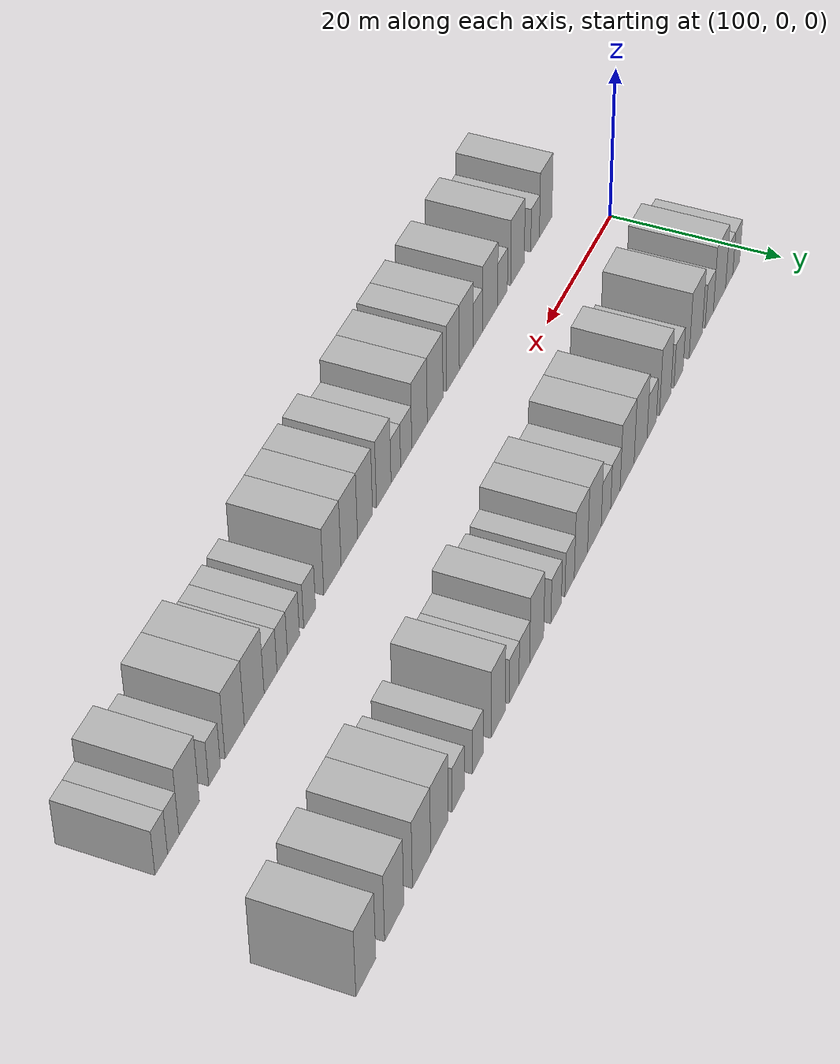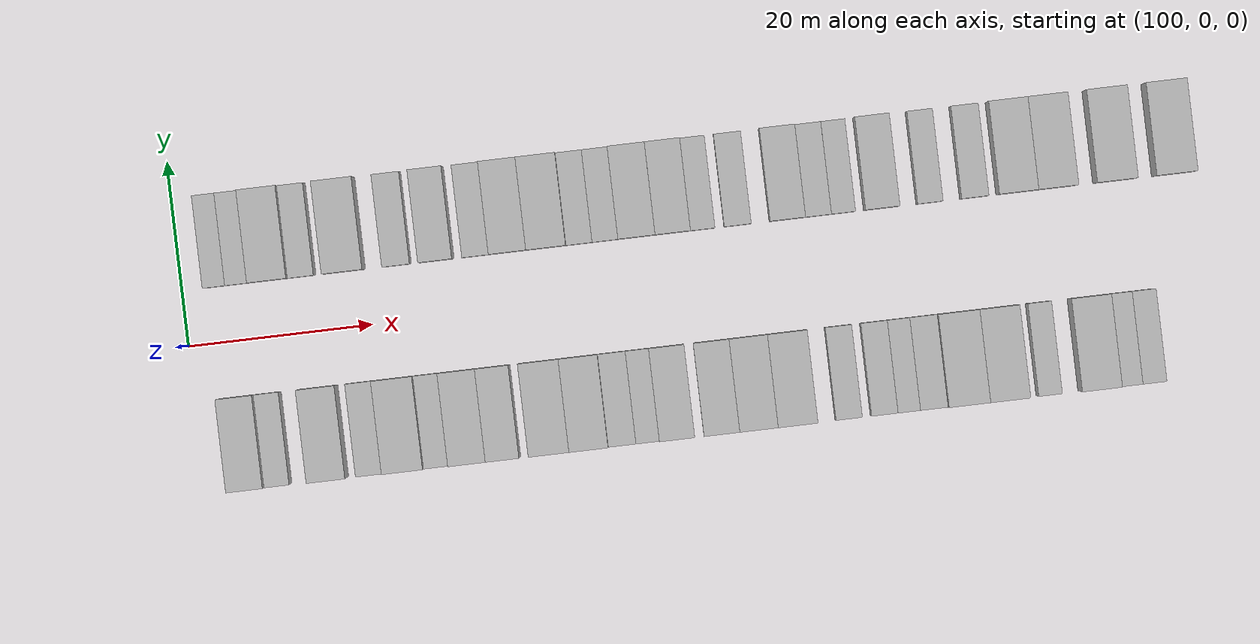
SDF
<sdf version="1.6">
 <world name="default">
  <model name="building_27">
   <static>1</static>
   <pose>103.7505 11.0000 0 0.000000 0.000000 1.570796</pose>
   <link name="link">
    <pose>0 0 3.00 0 0 0</pose>
    <collision name="collision"><geometry><box><size>10.0000 2.4264 6.0000</size></box></geometry></collision>
    <visual name="visual">
     <cast_shadows>0</cast_shadows>
     <geometry><box><size>10.0000 2.4264 6.0000</size></box></geometry>
     <material>
      <script>
       <uri>model://HANNAS_wall/materials/scripts</uri>
       <uri>model://HANNAS_wall/materials/textures</uri>
       <name>vrc/HANNAS_wall</name>
      </script>
     </material>
    </visual>
   </link>
  </model>
  <model name="building_28">
   <static>1</static>
   <pose>106.2379 11.0000 0 0.000000 0.000000 1.570796</pose>
   <link name="link">
    <pose>0 0 3.00 0 0 0</pose>
    <collision name="collision"><geometry><box><size>10.0000 2.5483 6.0000</size></box></geometry></collision>
    <visual name="visual">
     <cast_shadows>0</cast_shadows>
     <geometry><box><size>10.0000 2.5483 6.0000</size></box></geometry>
     <material>
      <script>
       <uri>model://HANNAS_wall/materials/scripts</uri>
       <uri>model://HANNAS_wall/materials/textures</uri>
       <name>vrc/HANNAS_wall</name>
      </script>
     </material>
    </visual>
   </link>
  </model>
  <model name="building_29">
   <static>1</static>
   <pose>109.6192 11.0000 0 0.000000 0.000000 1.570796</pose>
   <link name="link">
    <pose>0 0 4.50 0 0 0</pose>
    <collision name="collision"><geometry><box><size>10.0000 4.2144 9.0000</size></box></geometry></collision>
    <visual name="visual">
     <cast_shadows>0</cast_shadows>
     <geometry><box><size>10.0000 4.2144 9.0000</size></box></geometry>
     <material>
      <script>
       <uri>model://HANNAS_wall/materials/scripts</uri>
       <uri>model://HANNAS_wall/materials/textures</uri>
       <name>vrc/HANNAS_wall</name>
      </script>
     </material>
    </visual>
   </link>
  </model>
  <model name="building_30">
   <static>1</static>
   <pose>113.1307 11.0000 0 0.000000 0.000000 1.570796</pose>
   <link name="link">
    <pose>0 0 3.00 0 0 0</pose>
    <collision name="collision"><geometry><box><size>10.0000 2.8086 6.0000</size></box></geometry></collision>
    <visual name="visual">
     <cast_shadows>0</cast_shadows>
     <geometry><box><size>10.0000 2.8086 6.0000</size></box></geometry>
     <material>
      <script>
       <uri>model://HANNAS_wall/materials/scripts</uri>
       <uri>model://HANNAS_wall/materials/textures</uri>
       <name>vrc/HANNAS_wall</name>
      </script>
     </material>
    </visual>
   </link>
  </model>
  <model name="building_31">
   <static>1</static>
   <pose>117.7258 11.0000 0 0.000000 0.000000 1.570796</pose>
   <link name="link">
    <pose>0 0 4.50 0 0 0</pose>
    <collision name="collision"><geometry><box><size>10.0000 4.3816 9.0000</size></box></geometry></collision>
    <visual name="visual">
     <cast_shadows>0</cast_shadows>
     <geometry><box><size>10.0000 4.3816 9.0000</size></box></geometry>
     <material>
      <script>
       <uri>model://HANNAS_wall/materials/scripts</uri>
       <uri>model://HANNAS_wall/materials/textures</uri>
       <name>vrc/HANNAS_wall</name>
      </script>
     </material>
    </visual>
   </link>
  </model>
  <model name="building_32">
   <static>1</static>
   <pose>123.4141 11.0000 0 0.000000 0.000000 1.570796</pose>
   <link name="link">
    <pose>0 0 3.00 0 0 0</pose>
    <collision name="collision"><geometry><box><size>10.0000 2.9950 6.0000</size></box></geometry></collision>
    <visual name="visual">
     <cast_shadows>0</cast_shadows>
     <geometry><box><size>10.0000 2.9950 6.0000</size></box></geometry>
     <material>
      <script>
       <uri>model://HANNAS_wall/materials/scripts</uri>
       <uri>model://HANNAS_wall/materials/textures</uri>
       <name>vrc/HANNAS_wall</name>
      </script>
     </material>
    </visual>
   </link>
  </model>
  <model name="building_33">
   <static>1</static>
   <pose>127.7381 11.0000 0 0.000000 0.000000 1.570796</pose>
   <link name="link">
    <pose>0 0 4.50 0 0 0</pose>
    <collision name="collision"><geometry><box><size>10.0000 3.6529 9.0000</size></box></geometry></collision>
    <visual name="visual">
     <cast_shadows>0</cast_shadows>
     <geometry><box><size>10.0000 3.6529 9.0000</size></box></geometry>
     <material>
      <script>
       <uri>model://HANNAS_wall/materials/scripts</uri>
       <uri>model://HANNAS_wall/materials/textures</uri>
       <name>vrc/HANNAS_wall</name>
      </script>
     </material>
    </visual>
   </link>
  </model>
  <model name="building_34">
   <static>1</static>
   <pose>132.0323 11.0000 0 0.000000 0.000000 1.570796</pose>
   <link name="link">
    <pose>0 0 3.00 0 0 0</pose>
    <collision name="collision"><geometry><box><size>10.0000 2.9356 6.0000</size></box></geometry></collision>
    <visual name="visual">
     <cast_shadows>0</cast_shadows>
     <geometry><box><size>10.0000 2.9356 6.0000</size></box></geometry>
     <material>
      <script>
       <uri>model://HANNAS_wall/materials/scripts</uri>
       <uri>model://HANNAS_wall/materials/textures</uri>
       <name>vrc/HANNAS_wall</name>
      </script>
     </material>
    </visual>
   </link>
  </model>
  <model name="building_35">
   <static>1</static>
   <pose>135.5147 11.0000 0 0.000000 0.000000 1.570796</pose>
   <link name="link">
    <pose>0 0 4.50 0 0 0</pose>
    <collision name="collision"><geometry><box><size>10.0000 4.0293 9.0000</size></box></geometry></collision>
    <visual name="visual">
     <cast_shadows>0</cast_shadows>
     <geometry><box><size>10.0000 4.0293 9.0000</size></box></geometry>
     <material>
      <script>
       <uri>model://HANNAS_wall/materials/scripts</uri>
       <uri>model://HANNAS_wall/materials/textures</uri>
       <name>vrc/HANNAS_wall</name>
      </script>
     </material>
    </visual>
   </link>
  </model>
  <model name="building_36">
   <static>1</static>
   <pose>139.6700 11.0000 0 0.000000 0.000000 1.570796</pose>
   <link name="link">
    <pose>0 0 4.50 0 0 0</pose>
    <collision name="collision"><geometry><box><size>10.0000 4.2813 9.0000</size></box></geometry></collision>
    <visual name="visual">
     <cast_shadows>0</cast_shadows>
     <geometry><box><size>10.0000 4.2813 9.0000</size></box></geometry>
     <material>
      <script>
       <uri>model://HANNAS_wall/materials/scripts</uri>
       <uri>model://HANNAS_wall/materials/textures</uri>
       <name>vrc/HANNAS_wall</name>
      </script>
     </material>
    </visual>
   </link>
  </model>
  <model name="building_37">
   <static>1</static>
   <pose>143.2204 11.0000 0 0.000000 0.000000 1.570796</pose>
   <link name="link">
    <pose>0 0 3.00 0 0 0</pose>
    <collision name="collision"><geometry><box><size>10.0000 2.8195 6.0000</size></box></geometry></collision>
    <visual name="visual">
     <cast_shadows>0</cast_shadows>
     <geometry><box><size>10.0000 2.8195 6.0000</size></box></geometry>
     <material>
      <script>
       <uri>model://HANNAS_wall/materials/scripts</uri>
       <uri>model://HANNAS_wall/materials/textures</uri>
       <name>vrc/HANNAS_wall</name>
      </script>
     </material>
    </visual>
   </link>
  </model>
  <model name="building_38">
   <static>1</static>
   <pose>146.0346 11.0000 0 0.000000 0.000000 1.570796</pose>
   <link name="link">
    <pose>0 0 3.00 0 0 0</pose>
    <collision name="collision"><geometry><box><size>10.0000 2.8088 6.0000</size></box></geometry></collision>
    <visual name="visual">
     <cast_shadows>0</cast_shadows>
     <geometry><box><size>10.0000 2.8088 6.0000</size></box></geometry>
     <material>
      <script>
       <uri>model://HANNAS_wall/materials/scripts</uri>
       <uri>model://HANNAS_wall/materials/textures</uri>
       <name>vrc/HANNAS_wall</name>
      </script>
     </material>
    </visual>
   </link>
  </model>
  <model name="building_39">
   <static>1</static>
   <pose>149.4398 11.0000 0 0.000000 0.000000 1.570796</pose>
   <link name="link">
    <pose>0 0 4.50 0 0 0</pose>
    <collision name="collision"><geometry><box><size>10.0000 4.0015 9.0000</size></box></geometry></collision>
    <visual name="visual">
     <cast_shadows>0</cast_shadows>
     <geometry><box><size>10.0000 4.0015 9.0000</size></box></geometry>
     <material>
      <script>
       <uri>model://HANNAS_wall/materials/scripts</uri>
       <uri>model://HANNAS_wall/materials/textures</uri>
       <name>vrc/HANNAS_wall</name>
      </script>
     </material>
    </visual>
   </link>
  </model>
  <model name="building_40">
   <static>1</static>
   <pose>153.3463 11.0000 0 0.000000 0.000000 1.570796</pose>
   <link name="link">
    <pose>0 0 4.50 0 0 0</pose>
    <collision name="collision"><geometry><box><size>10.0000 3.8114 9.0000</size></box></geometry></collision>
    <visual name="visual">
     <cast_shadows>0</cast_shadows>
     <geometry><box><size>10.0000 3.8114 9.0000</size></box></geometry>
     <material>
      <script>
       <uri>model://HANNAS_wall/materials/scripts</uri>
       <uri>model://HANNAS_wall/materials/textures</uri>
       <name>vrc/HANNAS_wall</name>
      </script>
     </material>
    </visual>
   </link>
  </model>
  <model name="building_41">
   <static>1</static>
   <pose>156.5776 11.0000 0 0.000000 0.000000 1.570796</pose>
   <link name="link">
    <pose>0 0 3.00 0 0 0</pose>
    <collision name="collision"><geometry><box><size>10.0000 2.6512 6.0000</size></box></geometry></collision>
    <visual name="visual">
     <cast_shadows>0</cast_shadows>
     <geometry><box><size>10.0000 2.6512 6.0000</size></box></geometry>
     <material>
      <script>
       <uri>model://HANNAS_wall/materials/scripts</uri>
       <uri>model://HANNAS_wall/materials/textures</uri>
       <name>vrc/HANNAS_wall</name>
      </script>
     </material>
    </visual>
   </link>
  </model>
  <model name="building_42">
   <static>1</static>
   <pose>160.3607 11.0000 0 0.000000 0.000000 1.570796</pose>
   <link name="link">
    <pose>0 0 3.00 0 0 0</pose>
    <collision name="collision"><geometry><box><size>10.0000 2.9149 6.0000</size></box></geometry></collision>
    <visual name="visual">
     <cast_shadows>0</cast_shadows>
     <geometry><box><size>10.0000 2.9149 6.0000</size></box></geometry>
     <material>
      <script>
       <uri>model://HANNAS_wall/materials/scripts</uri>
       <uri>model://HANNAS_wall/materials/textures</uri>
       <name>vrc/HANNAS_wall</name>
      </script>
     </material>
    </visual>
   </link>
  </model>
  <model name="building_43">
   <static>1</static>
   <pose>165.7238 11.0000 0 0.000000 0.000000 1.570796</pose>
   <link name="link">
    <pose>0 0 4.50 0 0 0</pose>
    <collision name="collision"><geometry><box><size>10.0000 3.8115 9.0000</size></box></geometry></collision>
    <visual name="visual">
     <cast_shadows>0</cast_shadows>
     <geometry><box><size>10.0000 3.8115 9.0000</size></box></geometry>
     <material>
      <script>
       <uri>model://HANNAS_wall/materials/scripts</uri>
       <uri>model://HANNAS_wall/materials/textures</uri>
       <name>vrc/HANNAS_wall</name>
      </script>
     </material>
    </visual>
   </link>
  </model>
  <model name="building_44">
   <static>1</static>
   <pose>169.0576 11.0000 0 0.000000 0.000000 1.570796</pose>
   <link name="link">
    <pose>0 0 3.00 0 0 0</pose>
    <collision name="collision"><geometry><box><size>10.0000 2.8561 6.0000</size></box></geometry></collision>
    <visual name="visual">
     <cast_shadows>0</cast_shadows>
     <geometry><box><size>10.0000 2.8561 6.0000</size></box></geometry>
     <material>
      <script>
       <uri>model://HANNAS_wall/materials/scripts</uri>
       <uri>model://HANNAS_wall/materials/textures</uri>
       <name>vrc/HANNAS_wall</name>
      </script>
     </material>
    </visual>
   </link>
  </model>
  <model name="building_45">
   <static>1</static>
   <pose>171.7850 11.0000 0 0.000000 0.000000 1.570796</pose>
   <link name="link">
    <pose>0 0 3.00 0 0 0</pose>
    <collision name="collision"><geometry><box><size>10.0000 2.5986 6.0000</size></box></geometry></collision>
    <visual name="visual">
     <cast_shadows>0</cast_shadows>
     <geometry><box><size>10.0000 2.5986 6.0000</size></box></geometry>
     <material>
      <script>
       <uri>model://HANNAS_wall/materials/scripts</uri>
       <uri>model://HANNAS_wall/materials/textures</uri>
       <name>vrc/HANNAS_wall</name>
      </script>
     </material>
    </visual>
   </link>
  </model>
  <model name="building_46">
   <static>1</static>
   <pose>175.9358 11.0000 0 0.000000 0.000000 1.570796</pose>
   <link name="link">
    <pose>0 0 4.50 0 0 0</pose>
    <collision name="collision"><geometry><box><size>10.0000 3.7032 9.0000</size></box></geometry></collision>
    <visual name="visual">
     <cast_shadows>0</cast_shadows>
     <geometry><box><size>10.0000 3.7032 9.0000</size></box></geometry>
     <material>
      <script>
       <uri>model://HANNAS_wall/materials/scripts</uri>
       <uri>model://HANNAS_wall/materials/textures</uri>
       <name>vrc/HANNAS_wall</name>
      </script>
     </material>
    </visual>
   </link>
  </model>
  <model name="building_47">
   <static>1</static>
   <pose>181.1618 11.0000 0 0.000000 0.000000 1.570796</pose>
   <link name="link">
    <pose>0 0 3.00 0 0 0</pose>
    <collision name="collision"><geometry><box><size>10.0000 2.7487 6.0000</size></box></geometry></collision>
    <visual name="visual">
     <cast_shadows>0</cast_shadows>
     <geometry><box><size>10.0000 2.7487 6.0000</size></box></geometry>
     <material>
      <script>
       <uri>model://HANNAS_wall/materials/scripts</uri>
       <uri>model://HANNAS_wall/materials/textures</uri>
       <name>vrc/HANNAS_wall</name>
      </script>
     </material>
    </visual>
   </link>
  </model>
  <model name="building_48">
   <static>1</static>
   <pose>186.0117 11.0000 0 0.000000 0.000000 1.570796</pose>
   <link name="link">
    <pose>0 0 3.00 0 0 0</pose>
    <collision name="collision"><geometry><box><size>10.0000 2.9511 6.0000</size></box></geometry></collision>
    <visual name="visual">
     <cast_shadows>0</cast_shadows>
     <geometry><box><size>10.0000 2.9511 6.0000</size></box></geometry>
     <material>
      <script>
       <uri>model://HANNAS_wall/materials/scripts</uri>
       <uri>model://HANNAS_wall/materials/textures</uri>
       <name>vrc/HANNAS_wall</name>
      </script>
     </material>
    </visual>
   </link>
  </model>
  <model name="building_49">
   <static>1</static>
   <pose>190.6039 11.0000 0 0.000000 0.000000 1.570796</pose>
   <link name="link">
    <pose>0 0 4.50 0 0 0</pose>
    <collision name="collision"><geometry><box><size>10.0000 4.2335 9.0000</size></box></geometry></collision>
    <visual name="visual">
     <cast_shadows>0</cast_shadows>
     <geometry><box><size>10.0000 4.2335 9.0000</size></box></geometry>
     <material>
      <script>
       <uri>model://HANNAS_wall/materials/scripts</uri>
       <uri>model://HANNAS_wall/materials/textures</uri>
       <name>vrc/HANNAS_wall</name>
      </script>
     </material>
    </visual>
   </link>
  </model>
  <model name="building_50">
   <static>1</static>
   <pose>194.8716 11.0000 0 0.000000 0.000000 1.570796</pose>
   <link name="link">
    <pose>0 0 4.50 0 0 0</pose>
    <collision name="collision"><geometry><box><size>10.0000 4.3019 9.0000</size></box></geometry></collision>
    <visual name="visual">
     <cast_shadows>0</cast_shadows>
     <geometry><box><size>10.0000 4.3019 9.0000</size></box></geometry>
     <material>
      <script>
       <uri>model://HANNAS_wall/materials/scripts</uri>
       <uri>model://HANNAS_wall/materials/textures</uri>
       <name>vrc/HANNAS_wall</name>
      </script>
     </material>
    </visual>
   </link>
  </model>
  <model name="building_51">
   <static>1</static>
   <pose>201.2206 11.0000 0 0.000000 0.000000 1.570796</pose>
   <link name="link">
    <pose>0 0 4.50 0 0 0</pose>
    <collision name="collision"><geometry><box><size>10.0000 4.3960 9.0000</size></box></geometry></collision>
    <visual name="visual">
     <cast_shadows>0</cast_shadows>
     <geometry><box><size>10.0000 4.3960 9.0000</size></box></geometry>
     <material>
      <script>
       <uri>model://HANNAS_wall/materials/scripts</uri>
       <uri>model://HANNAS_wall/materials/textures</uri>
       <name>vrc/HANNAS_wall</name>
      </script>
     </material>
    </visual>
   </link>
  </model>
  <model name="building_52">
   <static>1</static>
   <pose>207.6305 11.0000 0 0.000000 0.000000 1.570796</pose>
   <link name="link">
    <pose>0 0 4.50 0 0 0</pose>
    <collision name="collision"><geometry><box><size>10.0000 4.4238 9.0000</size></box></geometry></collision>
    <visual name="visual">
     <cast_shadows>0</cast_shadows>
     <geometry><box><size>10.0000 4.4238 9.0000</size></box></geometry>
     <material>
      <script>
       <uri>model://HANNAS_wall/materials/scripts</uri>
       <uri>model://HANNAS_wall/materials/textures</uri>
       <name>vrc/HANNAS_wall</name>
      </script>
     </material>
    </visual>
   </link>
  </model>
  <model name="building_78">
   <static>1</static>
   <pose>104.6436 -11.0000 0 0.000000 0.000000 1.570796</pose>
   <link name="link">
    <pose>0 0 4.50 0 0 0</pose>
    <collision name="collision"><geometry><box><size>10.0000 3.9435 9.0000</size></box></geometry></collision>
    <visual name="visual">
     <cast_shadows>0</cast_shadows>
     <geometry><box><size>10.0000 3.9435 9.0000</size></box></geometry>
     <material>
      <script>
       <uri>model://HANNAS_wall/materials/scripts</uri>
       <uri>model://HANNAS_wall/materials/textures</uri>
       <name>vrc/HANNAS_wall</name>
      </script>
     </material>
    </visual>
   </link>
  </model>
  <model name="building_79">
   <static>1</static>
   <pose>107.9692 -11.0000 0 0.000000 0.000000 1.570796</pose>
   <link name="link">
    <pose>0 0 3.00 0 0 0</pose>
    <collision name="collision"><geometry><box><size>10.0000 2.7077 6.0000</size></box></geometry></collision>
    <visual name="visual">
     <cast_shadows>0</cast_shadows>
     <geometry><box><size>10.0000 2.7077 6.0000</size></box></geometry>
     <material>
      <script>
       <uri>model://HANNAS_wall/materials/scripts</uri>
       <uri>model://HANNAS_wall/materials/textures</uri>
       <name>vrc/HANNAS_wall</name>
      </script>
     </material>
    </visual>
   </link>
  </model>
  <model name="building_80">
   <static>1</static>
   <pose>113.4063 -11.0000 0 0.000000 0.000000 1.570796</pose>
   <link name="link">
    <pose>0 0 4.50 0 0 0</pose>
    <collision name="collision"><geometry><box><size>10.0000 4.1665 9.0000</size></box></geometry></collision>
    <visual name="visual">
     <cast_shadows>0</cast_shadows>
     <geometry><box><size>10.0000 4.1665 9.0000</size></box></geometry>
     <material>
      <script>
       <uri>model://HANNAS_wall/materials/scripts</uri>
       <uri>model://HANNAS_wall/materials/textures</uri>
       <name>vrc/HANNAS_wall</name>
      </script>
     </material>
    </visual>
   </link>
  </model>
  <model name="building_81">
   <static>1</static>
   <pose>117.9511 -11.0000 0 0.000000 0.000000 1.570796</pose>
   <link name="link">
    <pose>0 0 3.00 0 0 0</pose>
    <collision name="collision"><geometry><box><size>10.0000 2.9232 6.0000</size></box></geometry></collision>
    <visual name="visual">
     <cast_shadows>0</cast_shadows>
     <geometry><box><size>10.0000 2.9232 6.0000</size></box></geometry>
     <material>
      <script>
       <uri>model://HANNAS_wall/materials/scripts</uri>
       <uri>model://HANNAS_wall/materials/textures</uri>
       <name>vrc/HANNAS_wall</name>
      </script>
     </material>
    </visual>
   </link>
  </model>
  <model name="building_82">
   <static>1</static>
   <pose>121.6260 -11.0000 0 0.000000 0.000000 1.570796</pose>
   <link name="link">
    <pose>0 0 4.50 0 0 0</pose>
    <collision name="collision"><geometry><box><size>10.0000 4.4265 9.0000</size></box></geometry></collision>
    <visual name="visual">
     <cast_shadows>0</cast_shadows>
     <geometry><box><size>10.0000 4.4265 9.0000</size></box></geometry>
     <material>
      <script>
       <uri>model://HANNAS_wall/materials/scripts</uri>
       <uri>model://HANNAS_wall/materials/textures</uri>
       <name>vrc/HANNAS_wall</name>
      </script>
     </material>
    </visual>
   </link>
  </model>
  <model name="building_83">
   <static>1</static>
   <pose>125.1942 -11.0000 0 0.000000 0.000000 1.570796</pose>
   <link name="link">
    <pose>0 0 3.00 0 0 0</pose>
    <collision name="collision"><geometry><box><size>10.0000 2.7098 6.0000</size></box></geometry></collision>
    <visual name="visual">
     <cast_shadows>0</cast_shadows>
     <geometry><box><size>10.0000 2.7098 6.0000</size></box></geometry>
     <material>
      <script>
       <uri>model://HANNAS_wall/materials/scripts</uri>
       <uri>model://HANNAS_wall/materials/textures</uri>
       <name>vrc/HANNAS_wall</name>
      </script>
     </material>
    </visual>
   </link>
  </model>
  <model name="building_84">
   <static>1</static>
   <pose>128.5670 -11.0000 0 0.000000 0.000000 1.570796</pose>
   <link name="link">
    <pose>0 0 4.50 0 0 0</pose>
    <collision name="collision"><geometry><box><size>10.0000 4.0359 9.0000</size></box></geometry></collision>
    <visual name="visual">
     <cast_shadows>0</cast_shadows>
     <geometry><box><size>10.0000 4.0359 9.0000</size></box></geometry>
     <material>
      <script>
       <uri>model://HANNAS_wall/materials/scripts</uri>
       <uri>model://HANNAS_wall/materials/textures</uri>
       <name>vrc/HANNAS_wall</name>
      </script>
     </material>
    </visual>
   </link>
  </model>
  <model name="building_85">
   <static>1</static>
   <pose>132.3955 -11.0000 0 0.000000 0.000000 1.570796</pose>
   <link name="link">
    <pose>0 0 4.50 0 0 0</pose>
    <collision name="collision"><geometry><box><size>10.0000 3.6212 9.0000</size></box></geometry></collision>
    <visual name="visual">
     <cast_shadows>0</cast_shadows>
     <geometry><box><size>10.0000 3.6212 9.0000</size></box></geometry>
     <material>
      <script>
       <uri>model://HANNAS_wall/materials/scripts</uri>
       <uri>model://HANNAS_wall/materials/textures</uri>
       <name>vrc/HANNAS_wall</name>
      </script>
     </material>
    </visual>
   </link>
  </model>
  <model name="building_86">
   <static>1</static>
   <pose>137.3933 -11.0000 0 0.000000 0.000000 1.570796</pose>
   <link name="link">
    <pose>0 0 4.50 0 0 0</pose>
    <collision name="collision"><geometry><box><size>10.0000 4.3745 9.0000</size></box></geometry></collision>
    <visual name="visual">
     <cast_shadows>0</cast_shadows>
     <geometry><box><size>10.0000 4.3745 9.0000</size></box></geometry>
     <material>
      <script>
       <uri>model://HANNAS_wall/materials/scripts</uri>
       <uri>model://HANNAS_wall/materials/textures</uri>
       <name>vrc/HANNAS_wall</name>
      </script>
     </material>
    </visual>
   </link>
  </model>
  <model name="building_87">
   <static>1</static>
   <pose>141.6869 -11.0000 0 0.000000 0.000000 1.570796</pose>
   <link name="link">
    <pose>0 0 4.50 0 0 0</pose>
    <collision name="collision"><geometry><box><size>10.0000 4.2127 9.0000</size></box></geometry></collision>
    <visual name="visual">
     <cast_shadows>0</cast_shadows>
     <geometry><box><size>10.0000 4.2127 9.0000</size></box></geometry>
     <material>
      <script>
       <uri>model://HANNAS_wall/materials/scripts</uri>
       <uri>model://HANNAS_wall/materials/textures</uri>
       <name>vrc/HANNAS_wall</name>
      </script>
     </material>
    </visual>
   </link>
  </model>
  <model name="building_88">
   <static>1</static>
   <pose>145.2846 -11.0000 0 0.000000 0.000000 1.570796</pose>
   <link name="link">
    <pose>0 0 3.00 0 0 0</pose>
    <collision name="collision"><geometry><box><size>10.0000 2.9827 6.0000</size></box></geometry></collision>
    <visual name="visual">
     <cast_shadows>0</cast_shadows>
     <geometry><box><size>10.0000 2.9827 6.0000</size></box></geometry>
     <material>
      <script>
       <uri>model://HANNAS_wall/materials/scripts</uri>
       <uri>model://HANNAS_wall/materials/textures</uri>
       <name>vrc/HANNAS_wall</name>
      </script>
     </material>
    </visual>
   </link>
  </model>
  <model name="building_89">
   <static>1</static>
   <pose>148.0448 -11.0000 0 0.000000 0.000000 1.570796</pose>
   <link name="link">
    <pose>0 0 3.00 0 0 0</pose>
    <collision name="collision"><geometry><box><size>10.0000 2.5377 6.0000</size></box></geometry></collision>
    <visual name="visual">
     <cast_shadows>0</cast_shadows>
     <geometry><box><size>10.0000 2.5377 6.0000</size></box></geometry>
     <material>
      <script>
       <uri>model://HANNAS_wall/materials/scripts</uri>
       <uri>model://HANNAS_wall/materials/textures</uri>
       <name>vrc/HANNAS_wall</name>
      </script>
     </material>
    </visual>
   </link>
  </model>
  <model name="building_90">
   <static>1</static>
   <pose>151.2189 -11.0000 0 0.000000 0.000000 1.570796</pose>
   <link name="link">
    <pose>0 0 4.50 0 0 0</pose>
    <collision name="collision"><geometry><box><size>10.0000 3.8105 9.0000</size></box></geometry></collision>
    <visual name="visual">
     <cast_shadows>0</cast_shadows>
     <geometry><box><size>10.0000 3.8105 9.0000</size></box></geometry>
     <material>
      <script>
       <uri>model://HANNAS_wall/materials/scripts</uri>
       <uri>model://HANNAS_wall/materials/textures</uri>
       <name>vrc/HANNAS_wall</name>
      </script>
     </material>
    </visual>
   </link>
  </model>
  <model name="building_91">
   <static>1</static>
   <pose>156.0473 -11.0000 0 0.000000 0.000000 1.570796</pose>
   <link name="link">
    <pose>0 0 4.50 0 0 0</pose>
    <collision name="collision"><geometry><box><size>10.0000 3.8462 9.0000</size></box></geometry></collision>
    <visual name="visual">
     <cast_shadows>0</cast_shadows>
     <geometry><box><size>10.0000 3.8462 9.0000</size></box></geometry>
     <material>
      <script>
       <uri>model://HANNAS_wall/materials/scripts</uri>
       <uri>model://HANNAS_wall/materials/textures</uri>
       <name>vrc/HANNAS_wall</name>
      </script>
     </material>
    </visual>
   </link>
  </model>
  <model name="building_92">
   <static>1</static>
   <pose>160.0369 -11.0000 0 0.000000 0.000000 1.570796</pose>
   <link name="link">
    <pose>0 0 4.50 0 0 0</pose>
    <collision name="collision"><geometry><box><size>10.0000 4.1331 9.0000</size></box></geometry></collision>
    <visual name="visual">
     <cast_shadows>0</cast_shadows>
     <geometry><box><size>10.0000 4.1331 9.0000</size></box></geometry>
     <material>
      <script>
       <uri>model://HANNAS_wall/materials/scripts</uri>
       <uri>model://HANNAS_wall/materials/textures</uri>
       <name>vrc/HANNAS_wall</name>
      </script>
     </material>
    </visual>
   </link>
  </model>
  <model name="building_93">
   <static>1</static>
   <pose>164.2429 -11.0000 0 0.000000 0.000000 1.570796</pose>
   <link name="link">
    <pose>0 0 4.50 0 0 0</pose>
    <collision name="collision"><geometry><box><size>10.0000 4.2789 9.0000</size></box></geometry></collision>
    <visual name="visual">
     <cast_shadows>0</cast_shadows>
     <geometry><box><size>10.0000 4.2789 9.0000</size></box></geometry>
     <material>
      <script>
       <uri>model://HANNAS_wall/materials/scripts</uri>
       <uri>model://HANNAS_wall/materials/textures</uri>
       <name>vrc/HANNAS_wall</name>
      </script>
     </material>
    </visual>
   </link>
  </model>
  <model name="building_94">
   <static>1</static>
   <pose>169.8040 -11.0000 0 0.000000 0.000000 1.570796</pose>
   <link name="link">
    <pose>0 0 3.00 0 0 0</pose>
    <collision name="collision"><geometry><box><size>10.0000 2.8434 6.0000</size></box></geometry></collision>
    <visual name="visual">
     <cast_shadows>0</cast_shadows>
     <geometry><box><size>10.0000 2.8434 6.0000</size></box></geometry>
     <material>
      <script>
       <uri>model://HANNAS_wall/materials/scripts</uri>
       <uri>model://HANNAS_wall/materials/textures</uri>
       <name>vrc/HANNAS_wall</name>
      </script>
     </material>
    </visual>
   </link>
  </model>
  <model name="building_95">
   <static>1</static>
   <pose>173.6534 -11.0000 0 0.000000 0.000000 1.570796</pose>
   <link name="link">
    <pose>0 0 3.00 0 0 0</pose>
    <collision name="collision"><geometry><box><size>10.0000 2.8553 6.0000</size></box></geometry></collision>
    <visual name="visual">
     <cast_shadows>0</cast_shadows>
     <geometry><box><size>10.0000 2.8553 6.0000</size></box></geometry>
     <material>
      <script>
       <uri>model://HANNAS_wall/materials/scripts</uri>
       <uri>model://HANNAS_wall/materials/textures</uri>
       <name>vrc/HANNAS_wall</name>
      </script>
     </material>
    </visual>
   </link>
  </model>
  <model name="building_96">
   <static>1</static>
   <pose>176.2957 -11.0000 0 0.000000 0.000000 1.570796</pose>
   <link name="link">
    <pose>0 0 3.00 0 0 0</pose>
    <collision name="collision"><geometry><box><size>10.0000 2.4294 6.0000</size></box></geometry></collision>
    <visual name="visual">
     <cast_shadows>0</cast_shadows>
     <geometry><box><size>10.0000 2.4294 6.0000</size></box></geometry>
     <material>
      <script>
       <uri>model://HANNAS_wall/materials/scripts</uri>
       <uri>model://HANNAS_wall/materials/textures</uri>
       <name>vrc/HANNAS_wall</name>
      </script>
     </material>
    </visual>
   </link>
  </model>
  <model name="building_97">
   <static>1</static>
   <pose>178.9986 -11.0000 0 0.000000 0.000000 1.570796</pose>
   <link name="link">
    <pose>0 0 3.00 0 0 0</pose>
    <collision name="collision"><geometry><box><size>10.0000 2.9762 6.0000</size></box></geometry></collision>
    <visual name="visual">
     <cast_shadows>0</cast_shadows>
     <geometry><box><size>10.0000 2.9762 6.0000</size></box></geometry>
     <material>
      <script>
       <uri>model://HANNAS_wall/materials/scripts</uri>
       <uri>model://HANNAS_wall/materials/textures</uri>
       <name>vrc/HANNAS_wall</name>
      </script>
     </material>
    </visual>
   </link>
  </model>
  <model name="building_98">
   <static>1</static>
   <pose>182.7218 -11.0000 0 0.000000 0.000000 1.570796</pose>
   <link name="link">
    <pose>0 0 4.50 0 0 0</pose>
    <collision name="collision"><geometry><box><size>10.0000 4.4703 9.0000</size></box></geometry></collision>
    <visual name="visual">
     <cast_shadows>0</cast_shadows>
     <geometry><box><size>10.0000 4.4703 9.0000</size></box></geometry>
     <material>
      <script>
       <uri>model://HANNAS_wall/materials/scripts</uri>
       <uri>model://HANNAS_wall/materials/textures</uri>
       <name>vrc/HANNAS_wall</name>
      </script>
     </material>
    </visual>
   </link>
  </model>
  <model name="building_99">
   <static>1</static>
   <pose>187.1107 -11.0000 0 0.000000 0.000000 1.570796</pose>
   <link name="link">
    <pose>0 0 4.50 0 0 0</pose>
    <collision name="collision"><geometry><box><size>10.0000 4.3075 9.0000</size></box></geometry></collision>
    <visual name="visual">
     <cast_shadows>0</cast_shadows>
     <geometry><box><size>10.0000 4.3075 9.0000</size></box></geometry>
     <material>
      <script>
       <uri>model://HANNAS_wall/materials/scripts</uri>
       <uri>model://HANNAS_wall/materials/textures</uri>
       <name>vrc/HANNAS_wall</name>
      </script>
     </material>
    </visual>
   </link>
  </model>
  <model name="building_100">
   <static>1</static>
   <pose>191.5404 -11.0000 0 0.000000 0.000000 1.570796</pose>
   <link name="link">
    <pose>0 0 3.00 0 0 0</pose>
    <collision name="collision"><geometry><box><size>10.0000 2.5519 6.0000</size></box></geometry></collision>
    <visual name="visual">
     <cast_shadows>0</cast_shadows>
     <geometry><box><size>10.0000 2.5519 6.0000</size></box></geometry>
     <material>
      <script>
       <uri>model://HANNAS_wall/materials/scripts</uri>
       <uri>model://HANNAS_wall/materials/textures</uri>
       <name>vrc/HANNAS_wall</name>
      </script>
     </material>
    </visual>
   </link>
  </model>
  <model name="building_101">
   <static>1</static>
   <pose>196.9689 -11.0000 0 0.000000 0.000000 1.570796</pose>
   <link name="link">
    <pose>0 0 4.50 0 0 0</pose>
    <collision name="collision"><geometry><box><size>10.0000 4.3051 9.0000</size></box></geometry></collision>
    <visual name="visual">
     <cast_shadows>0</cast_shadows>
     <geometry><box><size>10.0000 4.3051 9.0000</size></box></geometry>
     <material>
      <script>
       <uri>model://HANNAS_wall/materials/scripts</uri>
       <uri>model://HANNAS_wall/materials/textures</uri>
       <name>vrc/HANNAS_wall</name>
      </script>
     </material>
    </visual>
   </link>
  </model>
  <model name="building_102">
   <static>1</static>
   <pose>200.3231 -11.0000 0 0.000000 0.000000 1.570796</pose>
   <link name="link">
    <pose>0 0 3.00 0 0 0</pose>
    <collision name="collision"><geometry><box><size>10.0000 2.4032 6.0000</size></box></geometry></collision>
    <visual name="visual">
     <cast_shadows>0</cast_shadows>
     <geometry><box><size>10.0000 2.4032 6.0000</size></box></geometry>
     <material>
      <script>
       <uri>model://HANNAS_wall/materials/scripts</uri>
       <uri>model://HANNAS_wall/materials/textures</uri>
       <name>vrc/HANNAS_wall</name>
      </script>
     </material>
    </visual>
   </link>
  </model>
  <model name="building_103">
   <static>1</static>
   <pose>202.8160 -11.0000 0 0.000000 0.000000 1.570796</pose>
   <link name="link">
    <pose>0 0 3.00 0 0 0</pose>
    <collision name="collision"><geometry><box><size>10.0000 2.5827 6.0000</size></box></geometry></collision>
    <visual name="visual">
     <cast_shadows>0</cast_shadows>
     <geometry><box><size>10.0000 2.5827 6.0000</size></box></geometry>
     <material>
      <script>
       <uri>model://HANNAS_wall/materials/scripts</uri>
       <uri>model://HANNAS_wall/materials/textures</uri>
       <name>vrc/HANNAS_wall</name>
      </script>
     </material>
    </visual>
   </link>
  </model>
 </world>
</sdf>
